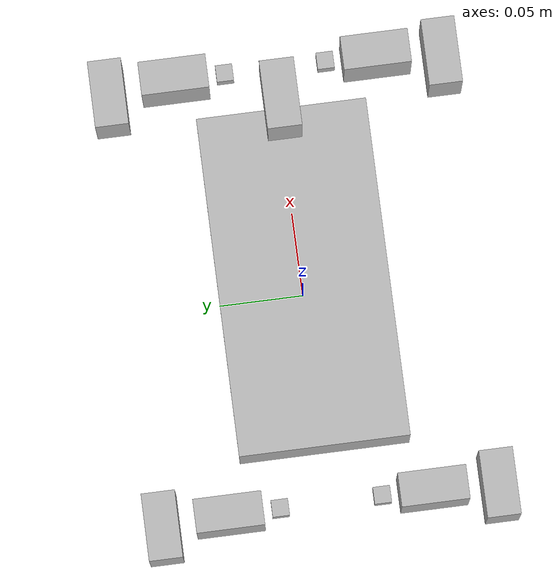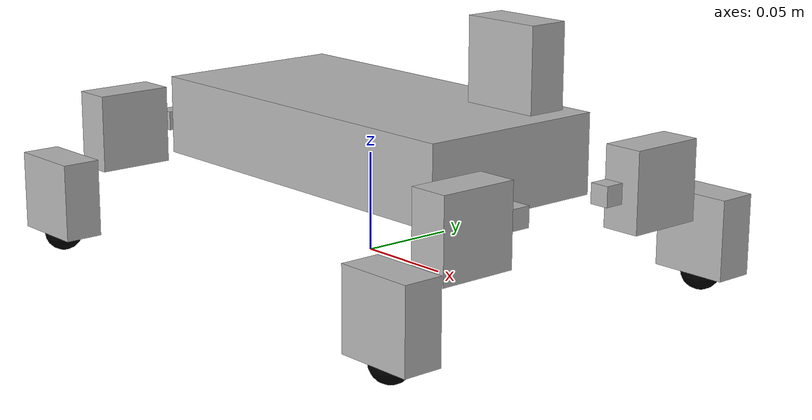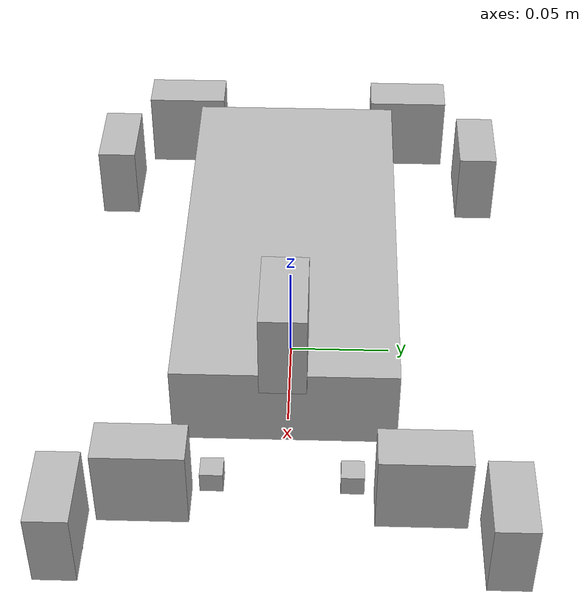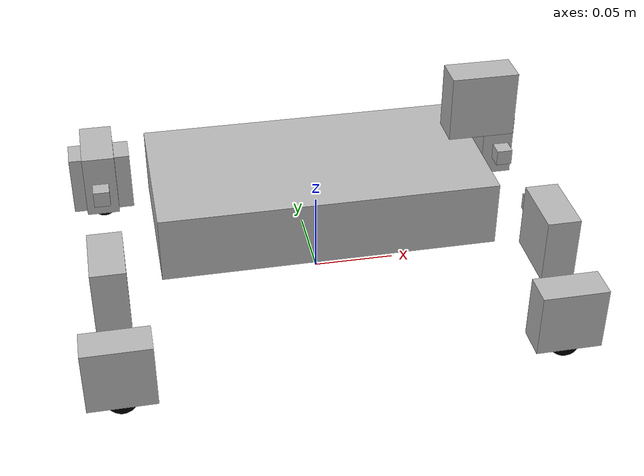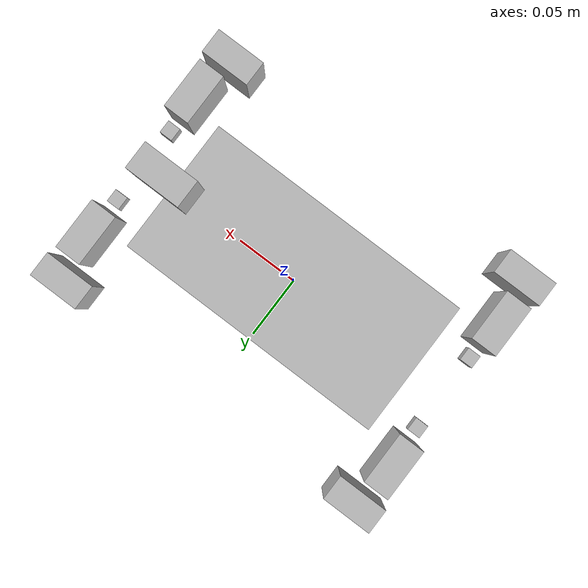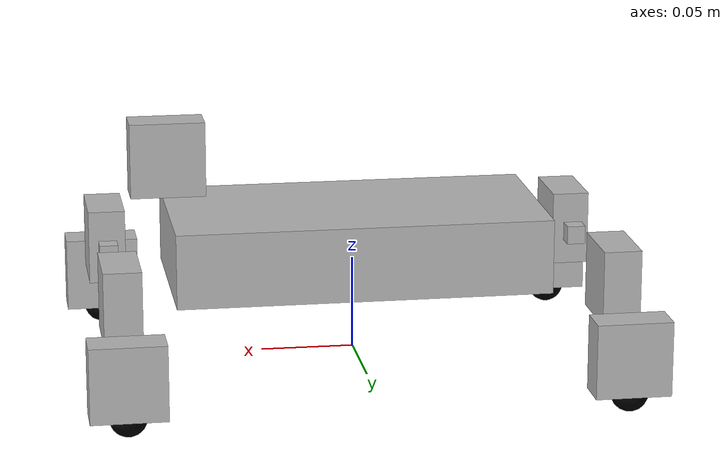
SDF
<?xml version="1.0"?>
<sdf version="1.5">
  <model name="fourlegs">
    <static>false</static>
    <self_collide>false</self_collide>
    <link name="BODY">
      <pose>0 0 0.06 0 0 0</pose>
      <inertial>
        <mass>2</mass>
        <inertia>
          <ixx>0.00194</ixx>
          <ixy>0</ixy>
          <ixz>0</ixz>
          <iyy>0.00694</iyy>
          <iyz>0</iyz>
          <izz>0.00834</izz>
        </inertia>
      </inertial>
      <collision name="collision">
        <geometry>
          <box>
            <size>0.2 0.1 0.04</size>
          </box>
        </geometry>
        <surface>
          <friction>
            <ode>
              <mu>1</mu>
              <mu2>1</mu2>
              <slip1>0</slip1>
              <slip2>0</slip2>
            </ode>
          </friction>
        </surface>
      </collision>
      <visual name="visual">
        <geometry>
          <box>
            <size>0.2 0.1 0.04</size>
          </box>
        </geometry>
      </visual>
    </link>
    <link name="NECK">
      <pose>0.1 0 0.11 0 0 0</pose>
      <inertial>
        <mass>0.2</mass>
        <inertia>
          <ixx>0.000034133</ixx>
          <ixy>0</ixy>
          <ixz>0</ixz>
          <iyy>0.000054613</iyy>
          <iyz>0</iyz>
          <izz>0.000034133</izz>
        </inertia>
      </inertial>
      <collision name="collision">
        <geometry>
          <box>
            <size>0.04 0.02 0.04</size>
          </box>
        </geometry>
        <surface>
          <friction>
            <ode>
              <mu>1</mu>
              <mu2>1</mu2>
              <slip1>0</slip1>
              <slip2>0</slip2>
            </ode>
          </friction>
        </surface>
      </collision>
      <visual name="visual">
        <geometry>
          <box>
            <size>0.04 0.02 0.04</size>
          </box>
        </geometry>
      </visual>
      <sensor type="camera" name="camera">
        <update_rate>20</update_rate>
        <visualize>false</visualize>
        <camera name="camera">
          <horizontal_fov>1.047</horizontal_fov>
          <image>
            <width>320</width>
            <height>240</height>
            <format>R8G8B8</format>
          </image>
          <clip>
            <near>0.1</near>
            <far>100</far>
          </clip>
          <!-- Noise is sampled independently per pixel on each frame.
               That pixel's noise value is added to each of its color
               channels, which at that point lie in the range [0,1]. -->
          <noise>
            <type>gaussian</type>
            <mean>0.0</mean>
            <stddev>0.007</stddev>
          </noise>
        </camera>
      </sensor>
    </link>
    <joint type="revolute" name="J_NECK">
      <pose>-0.02 0 -0.03 0 0 0</pose>
      <child>NECK</child>
      <parent>BODY</parent>
      <axis>
        <xyz>0 0 1</xyz>
        <limit>
          <lower>0</lower>
          <upper>0</upper>
        </limit>
      </axis>
    </joint>
    <link name="FR0">
      <pose>0.13 -0.03 0.05 0 0 0</pose>
      <inertial>
        <mass>0.01</mass>
        <inertia>
          <ixx>0.000000175</ixx>
          <ixy>0</ixy>
          <ixz>0</ixz>
          <iyy>0.000000175</iyy>
          <iyz>0</iyz>
          <izz>0.000000175</izz>
        </inertia>
      </inertial>
      <collision name="collision">
        <geometry>
          <box>
            <size>0.01 0.01 0.01</size>
          </box>
        </geometry>
        <surface>
          <friction>
            <ode>
              <mu>1</mu>
              <mu2>1</mu2>
              <slip1>0</slip1>
              <slip2>0</slip2>
            </ode>
          </friction>
        </surface>
      </collision>
      <visual name="visual">
        <geometry>
          <box>
            <size>0.01 0.01 0.01</size>
          </box>
        </geometry>
      </visual>
    </link>
    <joint type="revolute" name="J_FR_B20">
      <pose>0 0 0 0 0 0</pose>
      <child>FR0</child>
      <parent>BODY</parent>
      <axis>
        <xyz>-1 0 0</xyz>
      </axis>
    </joint>
    <link name="FR1">
      <pose>0.13 -0.06 0.05 0 0 0</pose>
      <inertial>
        <mass>0.2</mass>
        <inertia>
          <ixx>0.000054613</ixx>
          <ixy>0</ixy>
          <ixz>0</ixz>
          <iyy>0.000034133</iyy>
          <iyz>0</iyz>
          <izz>0.000034133</izz>
        </inertia>
      </inertial>
      <collision name="collision">
        <geometry>
          <box>
            <size>0.02 0.04 0.04</size>
          </box>
        </geometry>
        <surface>
          <friction>
            <ode>
              <mu>1</mu>
              <mu2>1</mu2>
              <slip1>0</slip1>
              <slip2>0</slip2>
            </ode>
          </friction>
        </surface>
      </collision>
      <visual name="visual">
        <geometry>
          <box>
            <size>0.02 0.04 0.04</size>
          </box>
        </geometry>
      </visual>
    </link>
    <joint type="revolute" name="J_FR_021">
      <pose>0 0.03 0 0 0 0</pose>
      <child>FR1</child>
      <parent>FR0</parent>
      <axis>
        <xyz>0 0 1</xyz>
      </axis>
    </joint>
    <link name="FR2">
      <pose>0.13 -0.1 0.02 0 0 0</pose>
      <inertial>
        <mass>0.2</mass>
        <inertia>
          <ixx>0.000034133</ixx>
          <ixy>0</ixy>
          <ixz>0</ixz>
          <iyy>0.000054613</iyy>
          <iyz>0</iyz>
          <izz>0.000034133</izz>
        </inertia>
      </inertial>
      <collision name="collision">
        <geometry>
          <box>
            <size>0.04 0.02 0.04</size>
          </box>
        </geometry>
        <surface>
          <friction>
            <ode>
              <mu>1</mu>
              <mu2>1</mu2>
              <slip1>0</slip1>
              <slip2>0</slip2>
            </ode>
          </friction>
        </surface>
      </collision>
      <visual name="visual">
        <geometry>
          <box>
            <size>0.04 0.02 0.04</size>
          </box>
        </geometry>
      </visual>
      <collision name="collision_sphere">
        <pose>0 0 -0.02 0 0 0</pose>
        <geometry>
          <sphere>
            <radius>0.01</radius>
          </sphere>
        </geometry>
        <surface>
          <friction>
            <ode>
              <mu>1</mu>
              <mu2>1</mu2>
              <slip1>0</slip1>
              <slip2>0</slip2>
            </ode>
          </friction>
        </surface>
      </collision>
      <visual name="visual_sphere">
        <pose>0 0 -0.02 0 0 0</pose>
        <geometry>
          <sphere>
            <radius>0.01</radius>
          </sphere>
        </geometry>
        <material>
          <ambient>0 0 0 1</ambient>
          <diffuse>0 0 0 1</diffuse>
          <specular>0.1 0.1 0.1 1</specular>
          <emissive>0 0 0 0</emissive>
        </material>
      </visual>
    </link>
    <joint type="revolute" name="J_FR_122">
      <pose>0 0 0.03 0 0 0</pose>
      <child>FR2</child>
      <parent>FR1</parent>
      <axis>
        <xyz>1 0 0</xyz>
      </axis>
    </joint>
    <link name="FL0">
      <pose>0.13 0.03 0.05 0 0 0</pose>
      <inertial>
        <mass>0.01</mass>
        <inertia>
          <ixx>0.000000175</ixx>
          <ixy>0</ixy>
          <ixz>0</ixz>
          <iyy>0.000000175</iyy>
          <iyz>0</iyz>
          <izz>0.000000175</izz>
        </inertia>
      </inertial>
      <collision name="collision">
        <geometry>
          <box>
            <size>0.01 0.01 0.01</size>
          </box>
        </geometry>
        <surface>
          <friction>
            <ode>
              <mu>1</mu>
              <mu2>1</mu2>
              <slip1>0</slip1>
              <slip2>0</slip2>
            </ode>
          </friction>
        </surface>
      </collision>
      <visual name="visual">
        <geometry>
          <box>
            <size>0.01 0.01 0.01</size>
          </box>
        </geometry>
      </visual>
    </link>
    <joint type="revolute" name="J_FL_B20">
      <pose>0 0 0 0 0 0</pose>
      <child>FL0</child>
      <parent>BODY</parent>
      <axis>
        <xyz>1 0 0</xyz>
      </axis>
    </joint>
    <link name="FL1">
      <pose>0.13 0.06 0.05 0 0 0</pose>
      <inertial>
        <mass>0.2</mass>
        <inertia>
          <ixx>0.000054613</ixx>
          <ixy>0</ixy>
          <ixz>0</ixz>
          <iyy>0.000034133</iyy>
          <iyz>0</iyz>
          <izz>0.000034133</izz>
        </inertia>
      </inertial>
      <collision name="collision">
        <geometry>
          <box>
            <size>0.02 0.04 0.04</size>
          </box>
        </geometry>
        <surface>
          <friction>
            <ode>
              <mu>1</mu>
              <mu2>1</mu2>
              <slip1>0</slip1>
              <slip2>0</slip2>
            </ode>
          </friction>
        </surface>
      </collision>
      <visual name="visual">
        <geometry>
          <box>
            <size>0.02 0.04 0.04</size>
          </box>
        </geometry>
      </visual>
    </link>
    <joint type="revolute" name="J_FL_021">
      <pose>0 -0.03 0 0 0 0</pose>
      <child>FL1</child>
      <parent>FL0</parent>
      <axis>
        <xyz>0 0 -1</xyz>
      </axis>
    </joint>
    <link name="FL2">
      <pose>0.13 0.1 0.02 0 0 0</pose>
      <inertial>
        <mass>0.2</mass>
        <inertia>
          <ixx>0.000034133</ixx>
          <ixy>0</ixy>
          <ixz>0</ixz>
          <iyy>0.000054613</iyy>
          <iyz>0</iyz>
          <izz>0.000034133</izz>
        </inertia>
      </inertial>
      <collision name="collision">
        <geometry>
          <box>
            <size>0.04 0.02 0.04</size>
          </box>
        </geometry>
        <surface>
          <friction>
            <ode>
              <mu>1</mu>
              <mu2>1</mu2>
              <slip1>0</slip1>
              <slip2>0</slip2>
            </ode>
          </friction>
        </surface>
      </collision>
      <visual name="visual">
        <geometry>
          <box>
            <size>0.04 0.02 0.04</size>
          </box>
        </geometry>
      </visual>
      <collision name="collision_sphere">
        <pose>0 0 -0.02 0 0 0</pose>
        <geometry>
          <sphere>
            <radius>0.01</radius>
          </sphere>
        </geometry>
        <surface>
          <friction>
            <ode>
              <mu>1</mu>
              <mu2>1</mu2>
              <slip1>0</slip1>
              <slip2>0</slip2>
            </ode>
          </friction>
        </surface>
      </collision>
      <visual name="visual_sphere">
        <pose>0 0 -0.02 0 0 0</pose>
        <geometry>
          <sphere>
            <radius>0.01</radius>
          </sphere>
        </geometry>
        <material>
          <ambient>0 0 0 1</ambient>
          <diffuse>0 0 0 1</diffuse>
          <specular>0.1 0.1 0.1 1</specular>
          <emissive>0 0 0 0</emissive>
        </material>
      </visual>
    </link>
    <joint type="revolute" name="J_FL_122">
      <pose>0 0 0.03 0 0 0</pose>
      <child>FL2</child>
      <parent>FL1</parent>
      <axis>
        <xyz>-1 0 0</xyz>
      </axis>
    </joint>
    <link name="RR0">
      <pose>-0.13 -0.03 0.05 0 0 0</pose>
      <inertial>
        <mass>0.01</mass>
        <inertia>
          <ixx>0.000000175</ixx>
          <ixy>0</ixy>
          <ixz>0</ixz>
          <iyy>0.000000175</iyy>
          <iyz>0</iyz>
          <izz>0.000000175</izz>
        </inertia>
      </inertial>
      <collision name="collision">
        <geometry>
          <box>
            <size>0.01 0.01 0.01</size>
          </box>
        </geometry>
        <surface>
          <friction>
            <ode>
              <mu>1</mu>
              <mu2>1</mu2>
              <slip1>0</slip1>
              <slip2>0</slip2>
            </ode>
          </friction>
        </surface>
      </collision>
      <visual name="visual">
        <geometry>
          <box>
            <size>0.01 0.01 0.01</size>
          </box>
        </geometry>
      </visual>
    </link>
    <joint type="revolute" name="J_RR_B20">
      <pose>0 0 0 0 0 0</pose>
      <child>RR0</child>
      <parent>BODY</parent>
      <axis>
        <xyz>-1 0 0</xyz>
      </axis>
    </joint>
    <link name="RR1">
      <pose>-0.13 -0.06 0.05 0 0 0</pose>
      <inertial>
        <mass>0.2</mass>
        <inertia>
          <ixx>0.000054613</ixx>
          <ixy>0</ixy>
          <ixz>0</ixz>
          <iyy>0.000034133</iyy>
          <iyz>0</iyz>
          <izz>0.000034133</izz>
        </inertia>
      </inertial>
      <collision name="collision">
        <geometry>
          <box>
            <size>0.02 0.04 0.04</size>
          </box>
        </geometry>
        <surface>
          <friction>
            <ode>
              <mu>1</mu>
              <mu2>1</mu2>
              <slip1>0</slip1>
              <slip2>0</slip2>
            </ode>
          </friction>
        </surface>
      </collision>
      <visual name="visual">
        <geometry>
          <box>
            <size>0.02 0.04 0.04</size>
          </box>
        </geometry>
      </visual>
    </link>
    <joint type="revolute" name="J_RR_021">
      <pose>0 0.03 0 0 0 0</pose>
      <child>RR1</child>
      <parent>RR0</parent>
      <axis>
        <xyz>0 0 -1</xyz>
      </axis>
    </joint>
    <link name="RR2">
      <pose>-0.13 -0.1 0.02 0 0 0</pose>
      <inertial>
        <mass>0.2</mass>
        <inertia>
          <ixx>0.000034133</ixx>
          <ixy>0</ixy>
          <ixz>0</ixz>
          <iyy>0.000054613</iyy>
          <iyz>0</iyz>
          <izz>0.000034133</izz>
        </inertia>
      </inertial>
      <collision name="collision">
        <geometry>
          <box>
            <size>0.04 0.02 0.04</size>
          </box>
        </geometry>
        <surface>
          <friction>
            <ode>
              <mu>1</mu>
              <mu2>1</mu2>
              <slip1>0</slip1>
              <slip2>0</slip2>
            </ode>
          </friction>
        </surface>
      </collision>
      <visual name="visual">
        <geometry>
          <box>
            <size>0.04 0.02 0.04</size>
          </box>
        </geometry>
      </visual>
      <collision name="collision_sphere">
        <pose>0 0 -0.02 0 0 0</pose>
        <geometry>
          <sphere>
            <radius>0.01</radius>
          </sphere>
        </geometry>
        <surface>
          <friction>
            <ode>
              <mu>1</mu>
              <mu2>1</mu2>
              <slip1>0</slip1>
              <slip2>0</slip2>
            </ode>
          </friction>
        </surface>
      </collision>
      <visual name="visual_sphere">
        <pose>0 0 -0.02 0 0 0</pose>
        <geometry>
          <sphere>
            <radius>0.01</radius>
          </sphere>
        </geometry>
        <material>
          <ambient>0 0 0 1</ambient>
          <diffuse>0 0 0 1</diffuse>
          <specular>0.1 0.1 0.1 1</specular>
          <emissive>0 0 0 0</emissive>
        </material>
      </visual>
    </link>
    <joint type="revolute" name="J_RR_122">
      <pose>0 0 0.03 0 0 0</pose>
      <child>RR2</child>
      <parent>RR1</parent>
      <axis>
        <xyz>1 0 0</xyz>
      </axis>
    </joint>
    <link name="RL0">
      <pose>-0.13 0.03 0.05 0 0 0</pose>
      <inertial>
        <mass>0.01</mass>
        <inertia>
          <ixx>0.000000175</ixx>
          <ixy>0</ixy>
          <ixz>0</ixz>
          <iyy>0.000000175</iyy>
          <iyz>0</iyz>
          <izz>0.000000175</izz>
        </inertia>
      </inertial>
      <collision name="collision">
        <geometry>
          <box>
            <size>0.01 0.01 0.01</size>
          </box>
        </geometry>
        <surface>
          <friction>
            <ode>
              <mu>1</mu>
              <mu2>1</mu2>
              <slip1>0</slip1>
              <slip2>0</slip2>
            </ode>
          </friction>
        </surface>
      </collision>
      <visual name="visual">
        <geometry>
          <box>
            <size>0.01 0.01 0.01</size>
          </box>
        </geometry>
      </visual>
    </link>
    <joint type="revolute" name="J_RL_B20">
      <pose>0 0 0 0 0 0</pose>
      <child>RL0</child>
      <parent>BODY</parent>
      <axis>
        <xyz>1 0 0</xyz>
      </axis>
    </joint>
    <link name="RL1">
      <pose>-0.13 0.06 0.05 0 0 0</pose>
      <inertial>
        <mass>0.2</mass>
        <inertia>
          <ixx>0.000054613</ixx>
          <ixy>0</ixy>
          <ixz>0</ixz>
          <iyy>0.000034133</iyy>
          <iyz>0</iyz>
          <izz>0.000034133</izz>
        </inertia>
      </inertial>
      <collision name="collision">
        <geometry>
          <box>
            <size>0.02 0.04 0.04</size>
          </box>
        </geometry>
        <surface>
          <friction>
            <ode>
              <mu>1</mu>
              <mu2>1</mu2>
              <slip1>0</slip1>
              <slip2>0</slip2>
            </ode>
          </friction>
        </surface>
      </collision>
      <visual name="visual">
        <geometry>
          <box>
            <size>0.02 0.04 0.04</size>
          </box>
        </geometry>
      </visual>
    </link>
    <joint type="revolute" name="J_RL_021">
      <pose>0 -0.03 0 0 0 0</pose>
      <child>RL1</child>
      <parent>RL0</parent>
      <axis>
        <xyz>0 0 1</xyz>
      </axis>
    </joint>
    <link name="RL2">
      <pose>-0.13 0.1 0.02 0 0 0</pose>
      <inertial>
        <mass>0.2</mass>
        <inertia>
          <ixx>0.000034133</ixx>
          <ixy>0</ixy>
          <ixz>0</ixz>
          <iyy>0.000054613</iyy>
          <iyz>0</iyz>
          <izz>0.000034133</izz>
        </inertia>
      </inertial>
      <collision name="collision">
        <geometry>
          <box>
            <size>0.04 0.02 0.04</size>
          </box>
        </geometry>
        <surface>
          <friction>
            <ode>
              <mu>1</mu>
              <mu2>1</mu2>
              <slip1>0</slip1>
              <slip2>0</slip2>
            </ode>
          </friction>
        </surface>
      </collision>
      <visual name="visual">
        <geometry>
          <box>
            <size>0.04 0.02 0.04</size>
          </box>
        </geometry>
      </visual>
      <collision name="collision_sphere">
        <pose>0 0 -0.02 0 0 0</pose>
        <geometry>
          <sphere>
            <radius>0.01</radius>
          </sphere>
        </geometry>
        <surface>
          <friction>
            <ode>
              <mu>1</mu>
              <mu2>1</mu2>
              <slip1>0</slip1>
              <slip2>0</slip2>
            </ode>
          </friction>
        </surface>
      </collision>
      <visual name="visual_sphere">
        <pose>0 0 -0.02 0 0 0</pose>
        <geometry>
          <sphere>
            <radius>0.01</radius>
          </sphere>
        </geometry>
        <material>
          <ambient>0 0 0 1</ambient>
          <diffuse>0 0 0 1</diffuse>
          <specular>0.1 0.1 0.1 1</specular>
          <emissive>0 0 0 0</emissive>
        </material>
      </visual>
    </link>
    <joint type="revolute" name="J_RL_122">
      <pose>0 0 0.03 0 0 0</pose>
      <child>RL2</child>
      <parent>RL1</parent>
      <axis>
        <xyz>-1 0 0</xyz>
      </axis>
    </joint>
    <plugin filename="libQuadrupedMotion.so" name="QuadrupedMotion">
      <J_FR_B20>J_FR_B20</J_FR_B20>
      <J_FR_021>J_FR_021</J_FR_021>
      <J_FR_122>J_FR_122</J_FR_122>
      <J_FL_B20>J_FL_B20</J_FL_B20>
      <J_FL_021>J_FL_021</J_FL_021>
      <J_FL_122>J_FL_122</J_FL_122>
      <J_RR_B20>J_RR_B20</J_RR_B20>
      <J_RR_021>J_RR_021</J_RR_021>
      <J_RR_122>J_RR_122</J_RR_122>
      <J_RL_B20>J_RL_B20</J_RL_B20>
      <J_RL_021>J_RL_021</J_RL_021>
      <J_RL_122>J_RL_122</J_RL_122>
    </plugin>
  </model>
</sdf>
